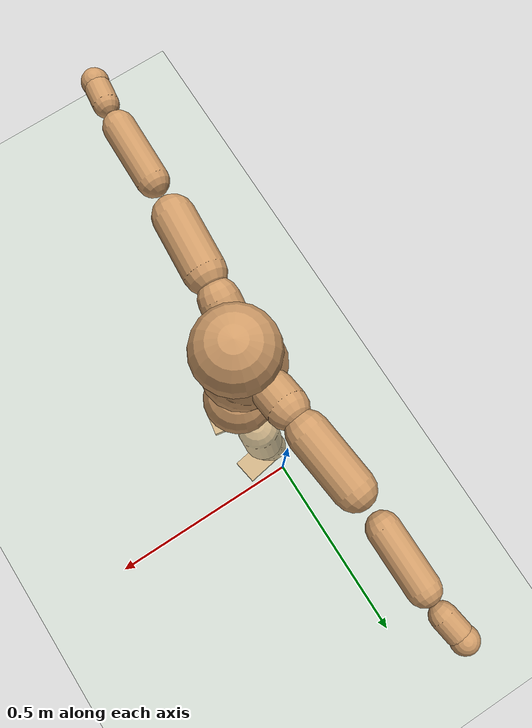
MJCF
<mujoco model="humanoid">
  <compiler coordinate="local"/>
  <default>
    <joint damping="0.0" armature="0.01" stiffness="0.0" limited="true"/>
    <geom conaffinity="1" condim="3" contype="7" margin="0.001" rgba="0.8 0.6 .4 1"/>
  </default>
  <asset>
    <texture type="skybox" builtin="gradient" rgb1=".4 .5 .6" rgb2="0 0 0" width="100" height="100"/>
    <texture builtin="flat" height="1278" mark="cross" markrgb="1 1 1" name="texgeom" random="0.01" rgb1="0.8 0.6 0.4" rgb2="0.8 0.6 0.4" type="cube" width="127"/>
    <texture builtin="checker" height="100" name="texplane" rgb1="0 0 0" rgb2="0.8 0.8 0.8" type="2d" width="100"/>
    <material name="MatPlane" reflectance="0.5" shininess="1" specular="1" texrepeat="60 60" texture="texplane"/>
    <material name="geom" texture="texgeom" texuniform="true"/>
  </asset>
  <worldbody>
    <light cutoff="100" diffuse="1 1 1" dir="-0 0 -1.3" directional="true" exponent="1" pos="0 0 1.3" specular=".1 .1 .1"/>
    <geom conaffinity="1" condim="3" name="floor" pos="0 0 0" rgba="0.8 0.9 0.8 1" size="100 100 .2" type="plane" material="MatPlane"/>
    <body name="Pelvis" pos="-0.0003 -0.2206 0.0353">
      <freejoint name="Pelvis"/>
      <geom type="sphere" contype="1" conaffinity="1" density="500" size="0.0990" pos="0.0000 0.0000 0.0000" name="Pelvis"/>
      <body name="L_Hip" pos="-0.0069 0.0732 -0.0962">
        <joint name="L_Hip_x" type="hinge" pos="0 0 0" axis="1 0 0" stiffness="800" damping="80" armature="0.02" range="-180.0000 180.0000"/>
        <joint name="L_Hip_y" type="hinge" pos="0 0 0" axis="0 1 0" stiffness="800" damping="80" armature="0.02" range="-180.0000 180.0000"/>
        <joint name="L_Hip_z" type="hinge" pos="0 0 0" axis="0 0 1" stiffness="800" damping="80" armature="0.02" range="-180.0000 180.0000"/>
        <geom type="capsule" contype="1" conaffinity="1" density="500" fromto="-0.0022 0.0057 -0.0744 -0.0086 0.0226 -0.2974" size="0.0609" name="L_Hip"/>
        <body name="L_Knee" pos="-0.0108 0.0283 -0.3718">
          <joint name="L_Knee_x" type="hinge" pos="0 0 0" axis="1 0 0" stiffness="800" damping="80" armature="0.02" range="-180.0000 180.0000"/>
          <joint name="L_Knee_y" type="hinge" pos="0 0 0" axis="0 1 0" stiffness="800" damping="80" armature="0.02" range="-180.0000 180.0000"/>
          <joint name="L_Knee_z" type="hinge" pos="0 0 0" axis="0 0 1" stiffness="800" damping="80" armature="0.02" range="-180.0000 180.0000"/>
          <geom type="capsule" contype="1" conaffinity="1" density="500" fromto="-0.0092 -0.0026 -0.0805 -0.0366 -0.0104 -0.3220" size="0.0534" name="L_Knee"/>
          <body name="L_Ankle" pos="-0.0458 -0.013 -0.4025">
            <joint name="L_Ankle_x" type="hinge" pos="0 0 0" axis="1 0 0" stiffness="800" damping="80" armature="0.02" range="-180.0000 180.0000"/>
            <joint name="L_Ankle_y" type="hinge" pos="0 0 0" axis="0 1 0" stiffness="800" damping="80" armature="0.02" range="-180.0000 180.0000"/>
            <joint name="L_Ankle_z" type="hinge" pos="0 0 0" axis="0 0 1" stiffness="800" damping="80" armature="0.02" range="-180.0000 180.0000"/>
            <geom type="box" contype="1" conaffinity="1" density="500" pos="0.0592 0.0098 -0.0283" size="0.0842 0.0449 0.0218" quat="0.9967 0.0000 0.0000 0.0817" name="L_Ankle"/>
            <body name="L_Toe" pos="0.1184 0.0195 -0.0566">
              <joint name="L_Toe_x" type="hinge" pos="0 0 0" axis="1 0 0" stiffness="500" damping="50" armature="0.02" range="-180.0000 180.0000"/>
              <joint name="L_Toe_y" type="hinge" pos="0 0 0" axis="0 1 0" stiffness="500" damping="50" armature="0.02" range="-180.0000 180.0000"/>
              <joint name="L_Toe_z" type="hinge" pos="0 0 0" axis="0 0 1" stiffness="500" damping="50" armature="0.02" range="-180.0000 180.0000"/>
              <geom type="box" contype="1" conaffinity="1" density="500" pos="0.0000 0.0000 0.0276" size="0.0009 0.0023 0.0011" quat="0.9961 0.0000 0.0000 0.0884" name="L_Toe"/>
            </body>
          </body>
        </body>
      </body>
      <body name="R_Hip" pos="-0.0015 -0.0706 -0.0961">
        <joint name="R_Hip_x" type="hinge" pos="0 0 0" axis="1 0 0" stiffness="800" damping="80" armature="0.02" range="-180.0000 180.0000"/>
        <joint name="R_Hip_y" type="hinge" pos="0 0 0" axis="0 1 0" stiffness="800" damping="80" armature="0.02" range="-180.0000 180.0000"/>
        <joint name="R_Hip_z" type="hinge" pos="0 0 0" axis="0 0 1" stiffness="800" damping="80" armature="0.02" range="-180.0000 180.0000"/>
        <geom type="capsule" contype="1" conaffinity="1" density="500" fromto="-0.0025 -0.0071 -0.0762 -0.0101 -0.0282 -0.3049" size="0.0604" name="R_Hip"/>
        <body name="R_Knee" pos="-0.0126 -0.0353 -0.3811">
          <joint name="R_Knee_x" type="hinge" pos="0 0 0" axis="1 0 0" stiffness="800" damping="80" armature="0.02" range="-180.0000 180.0000"/>
          <joint name="R_Knee_y" type="hinge" pos="0 0 0" axis="0 1 0" stiffness="800" damping="80" armature="0.02" range="-180.0000 180.0000"/>
          <joint name="R_Knee_z" type="hinge" pos="0 0 0" axis="0 0 1" stiffness="800" damping="80" armature="0.02" range="-180.0000 180.0000"/>
          <geom type="capsule" contype="1" conaffinity="1" density="500" fromto="-0.0088 0.0031 -0.0808 -0.0350 0.0125 -0.3231" size="0.0536" name="R_Knee"/>
          <body name="R_Ankle" pos="-0.0438 0.0156 -0.4038">
            <joint name="R_Ankle_x" type="hinge" pos="0 0 0" axis="1 0 0" stiffness="800" damping="80" armature="0.02" range="-180.0000 180.0000"/>
            <joint name="R_Ankle_y" type="hinge" pos="0 0 0" axis="0 1 0" stiffness="800" damping="80" armature="0.02" range="-180.0000 180.0000"/>
            <joint name="R_Ankle_z" type="hinge" pos="0 0 0" axis="0 0 1" stiffness="800" damping="80" armature="0.02" range="-180.0000 180.0000"/>
            <geom type="box" contype="1" conaffinity="1" density="500" pos="0.0609 -0.0107 -0.0236" size="0.0856 0.0465 0.021" quat="0.9962 0.0000 0.0000 -0.0868" name="R_Ankle"/>
            <body name="R_Toe" pos="0.1218 -0.0214 -0.0471">
              <joint name="R_Toe_x" type="hinge" pos="0 0 0" axis="1 0 0" stiffness="500" damping="50" armature="0.02" range="-180.0000 180.0000"/>
              <joint name="R_Toe_y" type="hinge" pos="0 0 0" axis="0 1 0" stiffness="500" damping="50" armature="0.02" range="-180.0000 180.0000"/>
              <joint name="R_Toe_z" type="hinge" pos="0 0 0" axis="0 0 1" stiffness="500" damping="50" armature="0.02" range="-180.0000 180.0000"/>
              <geom type="box" contype="1" conaffinity="1" density="500" pos="0.0000 0.0000 0.0256" size="0.0009 0.0023 0.0012" quat="0.9970 0.0000 0.0000 -0.0776" name="R_Toe"/>
            </body>
          </body>
        </body>
      </body>
      <body name="Torso" pos="-0.0255 -0.0024 0.1105">
        <joint name="Torso_x" type="hinge" pos="0 0 0" axis="1 0 0" stiffness="1000" damping="100" armature="0.02" range="-180.0000 180.0000"/>
        <joint name="Torso_y" type="hinge" pos="0 0 0" axis="0 1 0" stiffness="1000" damping="100" armature="0.02" range="-180.0000 180.0000"/>
        <joint name="Torso_z" type="hinge" pos="0 0 0" axis="0 0 1" stiffness="1000" damping="100" armature="0.02" range="-180.0000 180.0000"/>
        <geom type="capsule" contype="1" conaffinity="1" density="500" fromto="-0.0027 0.0020 0.0785 -0.0018 0.0013 0.0523" size="0.0769" name="Torso"/>
        <body name="Spine" pos="-0.0044 0.0033 0.1309">
          <joint name="Spine_x" type="hinge" pos="0 0 0" axis="1 0 0" stiffness="1000" damping="100" armature="0.02" range="-180.0000 180.0000"/>
          <joint name="Spine_y" type="hinge" pos="0 0 0" axis="0 1 0" stiffness="1000" damping="100" armature="0.02" range="-180.0000 180.0000"/>
          <joint name="Spine_z" type="hinge" pos="0 0 0" axis="0 0 1" stiffness="1000" damping="100" armature="0.02" range="-180.0000 180.0000"/>
          <geom type="capsule" contype="1" conaffinity="1" density="500" fromto="0.0194 0.0013 0.0303 0.0129 0.0009 0.0202" size="0.0771" name="Spine"/>
          <body name="Chest" pos="0.0323 0.0022 0.0505">
            <joint name="Chest_x" type="hinge" pos="0 0 0" axis="1 0 0" stiffness="1000" damping="100" armature="0.02" range="-180.0000 180.0000"/>
            <joint name="Chest_y" type="hinge" pos="0 0 0" axis="0 1 0" stiffness="1000" damping="100" armature="0.02" range="-180.0000 180.0000"/>
            <joint name="Chest_z" type="hinge" pos="0 0 0" axis="0 0 1" stiffness="1000" damping="100" armature="0.02" range="-180.0000 180.0000"/>
            <geom type="capsule" contype="1" conaffinity="1" density="500" fromto="-0.0315 -0.0004 0.0933 -0.0210 -0.0002 0.0622" size="0.0997" name="Chest"/>
            <body name="Neck" pos="-0.0628 -0.001 0.2183">
              <joint name="Neck_x" type="hinge" pos="0 0 0" axis="1 0 0" stiffness="500" damping="50" armature="0.02" range="-180.0000 180.0000"/>
              <joint name="Neck_y" type="hinge" pos="0 0 0" axis="0 1 0" stiffness="500" damping="50" armature="0.02" range="-180.0000 180.0000"/>
              <joint name="Neck_z" type="hinge" pos="0 0 0" axis="0 0 1" stiffness="500" damping="50" armature="0.02" range="-180.0000 180.0000"/>
              <geom type="capsule" contype="1" conaffinity="1" density="500" fromto="0.0101 0.0005 0.0119 0.0405 0.0019 0.0475" size="0.0418" name="Neck"/>
              <body name="Head" pos="0.0506 0.0023 0.0594">
                <joint name="Head_x" type="hinge" pos="0 0 0" axis="1 0 0" stiffness="500" damping="50" armature="0.02" range="-180.0000 180.0000"/>
                <joint name="Head_y" type="hinge" pos="0 0 0" axis="0 1 0" stiffness="500" damping="50" armature="0.02" range="-180.0000 180.0000"/>
                <joint name="Head_z" type="hinge" pos="0 0 0" axis="0 0 1" stiffness="500" damping="50" armature="0.02" range="-180.0000 180.0000"/>
                <geom type="sphere" contype="1" conaffinity="1" density="500" size="0.0992" pos="0.0000 0.0000 0.0000" name="Head"/>
              </body>
            </body>
            <body name="L_Thorax" pos="-0.0455 0.0755 0.1248">
              <joint name="L_Thorax_x" type="hinge" pos="0 0 0" axis="1 0 0" stiffness="500" damping="50" armature="0.02" range="-180.0000 180.0000"/>
              <joint name="L_Thorax_y" type="hinge" pos="0 0 0" axis="0 1 0" stiffness="500" damping="50" armature="0.02" range="-180.0000 180.0000"/>
              <joint name="L_Thorax_z" type="hinge" pos="0 0 0" axis="0 0 1" stiffness="500" damping="50" armature="0.02" range="-180.0000 180.0000"/>
              <geom type="capsule" contype="1" conaffinity="1" density="500" fromto="-0.0013 0.0164 0.0059 -0.0050 0.0656 0.0238" size="0.0507" name="L_Thorax"/>
              <body name="L_Shoulder" pos="-0.0063 0.082 0.0297">
                <joint name="L_Shoulder_x" type="hinge" pos="0 0 0" axis="1 0 0" stiffness="500" damping="50" armature="0.02" range="-720.0000 720.0000"/>
                <joint name="L_Shoulder_y" type="hinge" pos="0 0 0" axis="0 1 0" stiffness="500" damping="50" armature="0.02" range="-720.0000 720.0000"/>
                <joint name="L_Shoulder_z" type="hinge" pos="0 0 0" axis="0 0 1" stiffness="500" damping="50" armature="0.02" range="-720.0000 720.0000"/>
                <geom type="capsule" contype="1" conaffinity="1" density="500" fromto="-0.0057 0.0517 -0.0019 -0.0228 0.2068 -0.0074" size="0.0503" name="L_Shoulder"/>
                <body name="L_Elbow" pos="-0.0285 0.2585 -0.0093">
                  <joint name="L_Elbow_x" type="hinge" pos="0 0 0" axis="1 0 0" stiffness="500" damping="50" armature="0.02" range="-720.0000 720.0000"/>
                  <joint name="L_Elbow_y" type="hinge" pos="0 0 0" axis="0 1 0" stiffness="500" damping="50" armature="0.02" range="-720.0000 720.0000"/>
                  <joint name="L_Elbow_z" type="hinge" pos="0 0 0" axis="0 0 1" stiffness="500" damping="50" armature="0.02" range="-720.0000 720.0000"/>
                  <geom type="capsule" contype="1" conaffinity="1" density="500" fromto="-0.0000 0.0486 0.0018 -0.0001 0.1942 0.0071" size="0.0391" name="L_Elbow"/>
                  <body name="L_Wrist" pos="-0.0001 0.2428 0.0089">
                    <joint name="L_Wrist_x" type="hinge" pos="0 0 0" axis="1 0 0" stiffness="300" damping="30" armature="0.02" range="-180.0000 180.0000"/>
                    <joint name="L_Wrist_y" type="hinge" pos="0 0 0" axis="0 1 0" stiffness="300" damping="30" armature="0.02" range="-180.0000 180.0000"/>
                    <joint name="L_Wrist_z" type="hinge" pos="0 0 0" axis="0 0 1" stiffness="300" damping="30" armature="0.02" range="-180.0000 180.0000"/>
                    <geom type="capsule" contype="1" conaffinity="1" density="500" fromto="-0.0026 0.0161 -0.0020 -0.0106 0.0646 -0.0079" size="0.0306" name="L_Wrist"/>
                    <body name="L_Hand" pos="-0.0132 0.0807 -0.0099">
                      <joint name="L_Hand_x" type="hinge" pos="0 0 0" axis="1 0 0" stiffness="300" damping="30" armature="0.02" range="-180.0000 180.0000"/>
                      <joint name="L_Hand_y" type="hinge" pos="0 0 0" axis="0 1 0" stiffness="300" damping="30" armature="0.02" range="-180.0000 180.0000"/>
                      <joint name="L_Hand_z" type="hinge" pos="0 0 0" axis="0 0 1" stiffness="300" damping="30" armature="0.02" range="-180.0000 180.0000"/>
                      <geom type="sphere" contype="1" conaffinity="1" density="500" size="0.0326" pos="0.0000 0.0000 0.0000" name="L_Hand"/>
                    </body>
                  </body>
                </body>
              </body>
            </body>
            <body name="R_Thorax" pos="-0.0494 -0.0763 0.1233">
              <joint name="R_Thorax_x" type="hinge" pos="0 0 0" axis="1 0 0" stiffness="500" damping="50" armature="0.02" range="-180.0000 180.0000"/>
              <joint name="R_Thorax_y" type="hinge" pos="0 0 0" axis="0 1 0" stiffness="500" damping="50" armature="0.02" range="-180.0000 180.0000"/>
              <joint name="R_Thorax_z" type="hinge" pos="0 0 0" axis="0 0 1" stiffness="500" damping="50" armature="0.02" range="-180.0000 180.0000"/>
              <geom type="capsule" contype="1" conaffinity="1" density="500" fromto="-0.0018 -0.0173 0.0061 -0.0071 -0.0691 0.0243" size="0.0498" name="R_Thorax"/>
              <body name="R_Shoulder" pos="-0.0089 -0.0864 0.0303">
                <joint name="R_Shoulder_x" type="hinge" pos="0 0 0" axis="1 0 0" stiffness="500" damping="50" armature="0.02" range="-720.0000 720.0000"/>
                <joint name="R_Shoulder_y" type="hinge" pos="0 0 0" axis="0 1 0" stiffness="500" damping="50" armature="0.02" range="-720.0000 720.0000"/>
                <joint name="R_Shoulder_z" type="hinge" pos="0 0 0" axis="0 0 1" stiffness="500" damping="50" armature="0.02" range="-720.0000 720.0000"/>
                <geom type="capsule" contype="1" conaffinity="1" density="500" fromto="-0.0040 -0.0508 -0.0022 -0.0160 -0.2031 -0.0088" size="0.052" name="R_Shoulder"/>
                <body name="R_Elbow" pos="-0.02 -0.2539 -0.011">
                  <joint name="R_Elbow_x" type="hinge" pos="0 0 0" axis="1 0 0" stiffness="500" damping="50" armature="0.02" range="-720.0000 720.0000"/>
                  <joint name="R_Elbow_y" type="hinge" pos="0 0 0" axis="0 1 0" stiffness="500" damping="50" armature="0.02" range="-720.0000 720.0000"/>
                  <joint name="R_Elbow_z" type="hinge" pos="0 0 0" axis="0 0 1" stiffness="500" damping="50" armature="0.02" range="-720.0000 720.0000"/>
                  <geom type="capsule" contype="1" conaffinity="1" density="500" fromto="-0.0010 -0.0504 0.0020 -0.0040 -0.2018 0.0081" size="0.0396" name="R_Elbow"/>
                  <body name="R_Wrist" pos="-0.005 -0.2522 0.0101">
                    <joint name="R_Wrist_x" type="hinge" pos="0 0 0" axis="1 0 0" stiffness="300" damping="30" armature="0.02" range="-180.0000 180.0000"/>
                    <joint name="R_Wrist_y" type="hinge" pos="0 0 0" axis="0 1 0" stiffness="300" damping="30" armature="0.02" range="-180.0000 180.0000"/>
                    <joint name="R_Wrist_z" type="hinge" pos="0 0 0" axis="0 0 1" stiffness="300" damping="30" armature="0.02" range="-180.0000 180.0000"/>
                    <geom type="capsule" contype="1" conaffinity="1" density="500" fromto="-0.0022 -0.0165 -0.0015 -0.0087 -0.0661 -0.0061" size="0.0317" name="R_Wrist"/>
                    <body name="R_Hand" pos="-0.0108 -0.0827 -0.0077">
                      <joint name="R_Hand_x" type="hinge" pos="0 0 0" axis="1 0 0" stiffness="300" damping="30" armature="0.02" range="-180.0000 180.0000"/>
                      <joint name="R_Hand_y" type="hinge" pos="0 0 0" axis="0 1 0" stiffness="300" damping="30" armature="0.02" range="-180.0000 180.0000"/>
                      <joint name="R_Hand_z" type="hinge" pos="0 0 0" axis="0 0 1" stiffness="300" damping="30" armature="0.02" range="-180.0000 180.0000"/>
                      <geom type="sphere" contype="1" conaffinity="1" density="500" size="0.0333" pos="0.0000 0.0000 0.0000" name="R_Hand"/>
                    </body>
                  </body>
                </body>
              </body>
            </body>
          </body>
        </body>
      </body>
    </body>
  </worldbody>
  <actuator>
    <motor name="L_Hip_x" joint="L_Hip_x" gear="500"/>
    <motor name="L_Hip_y" joint="L_Hip_y" gear="500"/>
    <motor name="L_Hip_z" joint="L_Hip_z" gear="500"/>
    <motor name="L_Knee_x" joint="L_Knee_x" gear="500"/>
    <motor name="L_Knee_y" joint="L_Knee_y" gear="500"/>
    <motor name="L_Knee_z" joint="L_Knee_z" gear="500"/>
    <motor name="L_Ankle_x" joint="L_Ankle_x" gear="500"/>
    <motor name="L_Ankle_y" joint="L_Ankle_y" gear="500"/>
    <motor name="L_Ankle_z" joint="L_Ankle_z" gear="500"/>
    <motor name="L_Toe_x" joint="L_Toe_x" gear="500"/>
    <motor name="L_Toe_y" joint="L_Toe_y" gear="500"/>
    <motor name="L_Toe_z" joint="L_Toe_z" gear="500"/>
    <motor name="R_Hip_x" joint="R_Hip_x" gear="500"/>
    <motor name="R_Hip_y" joint="R_Hip_y" gear="500"/>
    <motor name="R_Hip_z" joint="R_Hip_z" gear="500"/>
    <motor name="R_Knee_x" joint="R_Knee_x" gear="500"/>
    <motor name="R_Knee_y" joint="R_Knee_y" gear="500"/>
    <motor name="R_Knee_z" joint="R_Knee_z" gear="500"/>
    <motor name="R_Ankle_x" joint="R_Ankle_x" gear="500"/>
    <motor name="R_Ankle_y" joint="R_Ankle_y" gear="500"/>
    <motor name="R_Ankle_z" joint="R_Ankle_z" gear="500"/>
    <motor name="R_Toe_x" joint="R_Toe_x" gear="500"/>
    <motor name="R_Toe_y" joint="R_Toe_y" gear="500"/>
    <motor name="R_Toe_z" joint="R_Toe_z" gear="500"/>
    <motor name="Torso_x" joint="Torso_x" gear="500"/>
    <motor name="Torso_y" joint="Torso_y" gear="500"/>
    <motor name="Torso_z" joint="Torso_z" gear="500"/>
    <motor name="Spine_x" joint="Spine_x" gear="500"/>
    <motor name="Spine_y" joint="Spine_y" gear="500"/>
    <motor name="Spine_z" joint="Spine_z" gear="500"/>
    <motor name="Chest_x" joint="Chest_x" gear="500"/>
    <motor name="Chest_y" joint="Chest_y" gear="500"/>
    <motor name="Chest_z" joint="Chest_z" gear="500"/>
    <motor name="Neck_x" joint="Neck_x" gear="500"/>
    <motor name="Neck_y" joint="Neck_y" gear="500"/>
    <motor name="Neck_z" joint="Neck_z" gear="500"/>
    <motor name="Head_x" joint="Head_x" gear="500"/>
    <motor name="Head_y" joint="Head_y" gear="500"/>
    <motor name="Head_z" joint="Head_z" gear="500"/>
    <motor name="L_Thorax_x" joint="L_Thorax_x" gear="500"/>
    <motor name="L_Thorax_y" joint="L_Thorax_y" gear="500"/>
    <motor name="L_Thorax_z" joint="L_Thorax_z" gear="500"/>
    <motor name="L_Shoulder_x" joint="L_Shoulder_x" gear="500"/>
    <motor name="L_Shoulder_y" joint="L_Shoulder_y" gear="500"/>
    <motor name="L_Shoulder_z" joint="L_Shoulder_z" gear="500"/>
    <motor name="L_Elbow_x" joint="L_Elbow_x" gear="500"/>
    <motor name="L_Elbow_y" joint="L_Elbow_y" gear="500"/>
    <motor name="L_Elbow_z" joint="L_Elbow_z" gear="500"/>
    <motor name="L_Wrist_x" joint="L_Wrist_x" gear="500"/>
    <motor name="L_Wrist_y" joint="L_Wrist_y" gear="500"/>
    <motor name="L_Wrist_z" joint="L_Wrist_z" gear="500"/>
    <motor name="L_Hand_x" joint="L_Hand_x" gear="500"/>
    <motor name="L_Hand_y" joint="L_Hand_y" gear="500"/>
    <motor name="L_Hand_z" joint="L_Hand_z" gear="500"/>
    <motor name="R_Thorax_x" joint="R_Thorax_x" gear="500"/>
    <motor name="R_Thorax_y" joint="R_Thorax_y" gear="500"/>
    <motor name="R_Thorax_z" joint="R_Thorax_z" gear="500"/>
    <motor name="R_Shoulder_x" joint="R_Shoulder_x" gear="500"/>
    <motor name="R_Shoulder_y" joint="R_Shoulder_y" gear="500"/>
    <motor name="R_Shoulder_z" joint="R_Shoulder_z" gear="500"/>
    <motor name="R_Elbow_x" joint="R_Elbow_x" gear="500"/>
    <motor name="R_Elbow_y" joint="R_Elbow_y" gear="500"/>
    <motor name="R_Elbow_z" joint="R_Elbow_z" gear="500"/>
    <motor name="R_Wrist_x" joint="R_Wrist_x" gear="500"/>
    <motor name="R_Wrist_y" joint="R_Wrist_y" gear="500"/>
    <motor name="R_Wrist_z" joint="R_Wrist_z" gear="500"/>
    <motor name="R_Hand_x" joint="R_Hand_x" gear="500"/>
    <motor name="R_Hand_y" joint="R_Hand_y" gear="500"/>
    <motor name="R_Hand_z" joint="R_Hand_z" gear="500"/>
  </actuator>
  <contact>
    <exclude body1="Torso" body2="Chest"/>
    <exclude body1="Head" body2="Chest"/>
    <exclude body1="R_Knee" body2="R_Toe"/>
    <exclude body1="R_Knee" body2="L_Ankle"/>
    <exclude body1="R_Knee" body2="L_Toe"/>
    <exclude body1="L_Knee" body2="L_Toe"/>
    <exclude body1="L_Knee" body2="R_Ankle"/>
    <exclude body1="L_Knee" body2="R_Toe"/>
    <exclude body1="L_Shoulder" body2="Chest"/>
    <exclude body1="R_Shoulder" body2="Chest"/>
  </contact>
  <sensor/>
  <size njmax="700" nconmax="700"/>
</mujoco>
